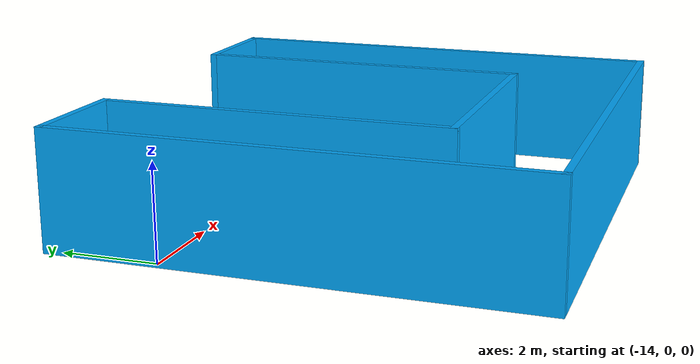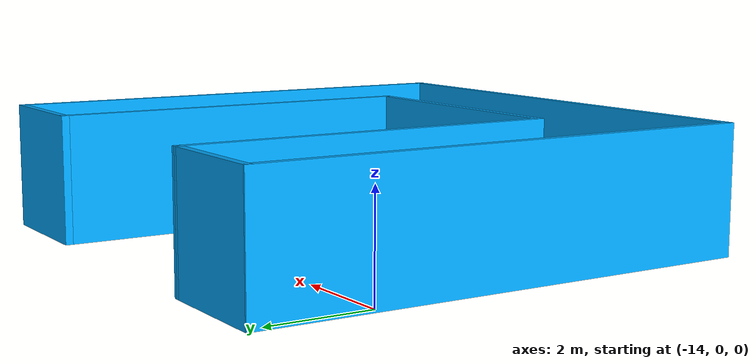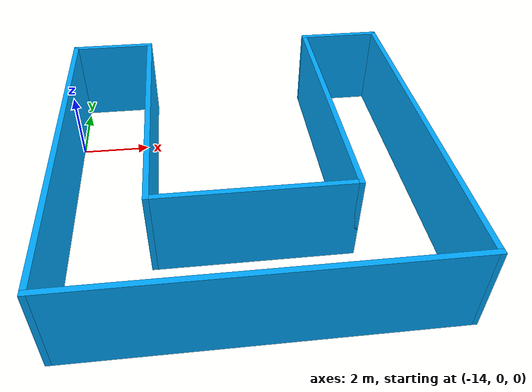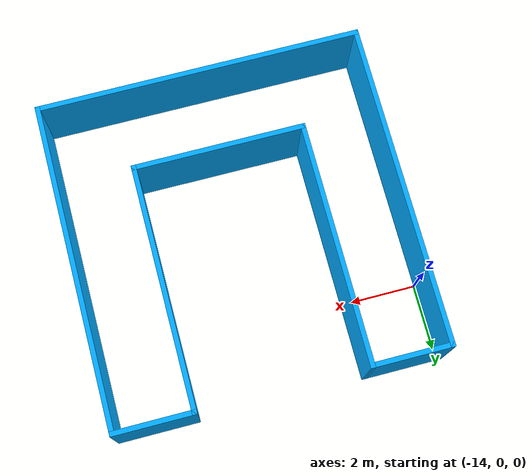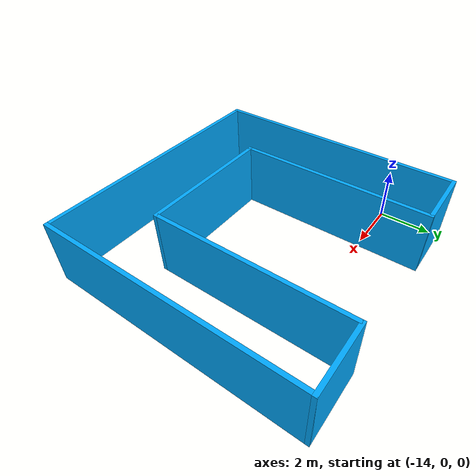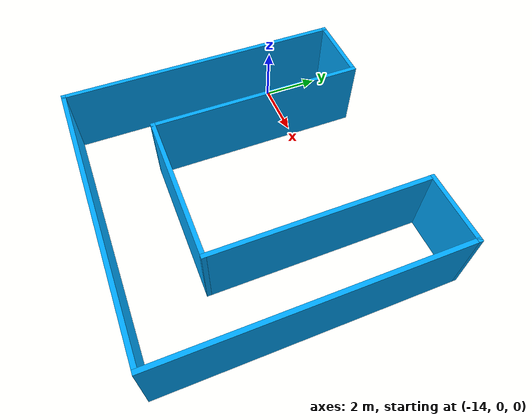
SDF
<?xml version='1.0'?>
<sdf version='1.6'>
  <model name='mybuilding'>
    <pose frame=''>-9.1608 -2.65484 0 0 -0 0</pose>
    <link name='Wall_10'>
      <collision name='Wall_10_Collision'>
        <geometry>
          <box>
            <size>2.5 0.15 2.5</size>
          </box>
        </geometry>
        <pose frame=''>0 0 1.25 0 -0 0</pose>
      </collision>
      <visual name='Wall_10_Visual'>
        <pose frame=''>0 0 1.25 0 -0 0</pose>
        <geometry>
          <box>
            <size>2.5 0.15 2.5</size>
          </box>
        </geometry>
        <material>
          <script>
            <uri>file://media/materials/scripts/gazebo.material</uri>
            <name>Gazebo/Grey</name>
          </script>
          <ambient>0 0.666667 1 1</ambient>
        </material>
        <meta>
          <layer>0</layer>
        </meta>
      </visual>
      <pose frame=''>-3.75 4.925 0 0 -0 0.000136</pose>
    </link>
    <link name='Wall_12'>
      <collision name='Wall_12_Collision'>
        <geometry>
          <box>
            <size>10 0.15 2.5</size>
          </box>
        </geometry>
        <pose frame=''>0 0 1.25 0 -0 0</pose>
      </collision>
      <visual name='Wall_12_Visual'>
        <pose frame=''>0 0 1.25 0 -0 0</pose>
        <geometry>
          <box>
            <size>10 0.15 2.5</size>
          </box>
        </geometry>
        <material>
          <script>
            <uri>file://media/materials/scripts/gazebo.material</uri>
            <name>Gazebo/Grey</name>
          </script>
          <ambient>0 0.666667 1 1</ambient>
        </material>
        <meta>
          <layer>0</layer>
        </meta>
      </visual>
      <pose frame=''>0 -4.925 0 0 -0 3.2e-05</pose>
    </link>
    <link name='Wall_13'>
      <collision name='Wall_13_Collision'>
        <geometry>
          <box>
            <size>10 0.15 2.5</size>
          </box>
        </geometry>
        <pose frame=''>0 0 1.25 0 -0 0</pose>
      </collision>
      <visual name='Wall_13_Visual'>
        <pose frame=''>0 0 1.25 0 -0 0</pose>
        <geometry>
          <box>
            <size>10 0.15 2.5</size>
          </box>
        </geometry>
        <material>
          <script>
            <uri>file://media/materials/scripts/gazebo.material</uri>
            <name>Gazebo/Grey</name>
          </script>
          <ambient>0 0.666667 1 1</ambient>
        </material>
        <meta>
          <layer>0</layer>
        </meta>
      </visual>
      <pose frame=''>4.9252 0.000156 0 0 -0 1.5708</pose>
    </link>
    <link name='Wall_14'>
      <collision name='Wall_14_Collision'>
        <geometry>
          <box>
            <size>2.5 0.15 2.5</size>
          </box>
        </geometry>
        <pose frame=''>0 0 1.25 0 -0 0</pose>
      </collision>
      <visual name='Wall_14_Visual'>
        <pose frame=''>0 0 1.25 0 -0 0</pose>
        <geometry>
          <box>
            <size>2.5 0.15 2.5</size>
          </box>
        </geometry>
        <material>
          <script>
            <uri>file://media/materials/scripts/gazebo.material</uri>
            <name>Gazebo/Grey</name>
          </script>
          <ambient>0 0.666667 1 1</ambient>
        </material>
        <meta>
          <layer>0</layer>
        </meta>
      </visual>
      <pose frame=''>3.7502 4.92516 0 0 -0 3.14159</pose>
    </link>
    <link name='Wall_15'>
      <collision name='Wall_15_Collision'>
        <geometry>
          <box>
            <size>7.5 0.15 2.5</size>
          </box>
        </geometry>
        <pose frame=''>0 0 1.25 0 -0 0</pose>
      </collision>
      <visual name='Wall_15_Visual'>
        <pose frame=''>0 0 1.25 0 -0 0</pose>
        <geometry>
          <box>
            <size>7.5 0.15 2.5</size>
          </box>
        </geometry>
        <material>
          <script>
            <uri>file://media/materials/scripts/gazebo.material</uri>
            <name>Gazebo/Grey</name>
          </script>
          <ambient>0 0.666667 1 1</ambient>
        </material>
        <meta>
          <layer>0</layer>
        </meta>
      </visual>
      <pose frame=''>2.5752 1.25016 0 0 0 -1.5708</pose>
    </link>
    <link name='Wall_19'>
      <collision name='Wall_19_Collision'>
        <geometry>
          <box>
            <size>7.5 0.15 2.5</size>
          </box>
        </geometry>
        <pose frame=''>0 0 1.25 0 -0 0</pose>
      </collision>
      <visual name='Wall_19_Visual'>
        <pose frame=''>0 0 1.25 0 -0 0</pose>
        <geometry>
          <box>
            <size>7.5 0.15 2.5</size>
          </box>
        </geometry>
        <material>
          <script>
            <uri>file://media/materials/scripts/gazebo.material</uri>
            <name>Gazebo/Grey</name>
          </script>
          <ambient>0 0.666667 1 1</ambient>
        </material>
        <meta>
          <layer>0</layer>
        </meta>
      </visual>
      <pose frame=''>-2.5748 1.25016 0 0 0 -1.5708</pose>
    </link>
    <link name='Wall_20'>
      <collision name='Wall_20_Collision'>
        <geometry>
          <box>
            <size>5.3 0.15 2.5</size>
          </box>
        </geometry>
        <pose frame=''>0 0 1.25 0 -0 0</pose>
      </collision>
      <visual name='Wall_20_Visual'>
        <pose frame=''>0 0 1.25 0 -0 0</pose>
        <geometry>
          <box>
            <size>5.3 0.15 2.5</size>
          </box>
        </geometry>
        <material>
          <script>
            <uri>file://media/materials/scripts/gazebo.material</uri>
            <name>Gazebo/Grey</name>
          </script>
          <ambient>0 0.666667 1 1</ambient>
        </material>
        <meta>
          <layer>0</layer>
        </meta>
      </visual>
      <pose frame=''>0.000202 -2.42484 0 0 -0 0</pose>
    </link>
    <link name='Wall_9'>
      <collision name='Wall_9_Collision'>
        <geometry>
          <box>
            <size>10 0.15 2.5</size>
          </box>
        </geometry>
        <pose frame=''>0 0 1.25 0 -0 0</pose>
      </collision>
      <visual name='Wall_9_Visual'>
        <pose frame=''>0 0 1.25 0 -0 0</pose>
        <geometry>
          <box>
            <size>10 0.15 2.5</size>
          </box>
        </geometry>
        <material>
          <script>
            <uri>file://media/materials/scripts/gazebo.material</uri>
            <name>Gazebo/Grey</name>
          </script>
          <ambient>0 0.666667 1 1</ambient>
        </material>
        <meta>
          <layer>0</layer>
        </meta>
      </visual>
      <pose frame=''>-4.9252 -0.000164 0 0 -0 1.5708</pose>
    </link>
    <static>1</static>
  </model>
</sdf>
